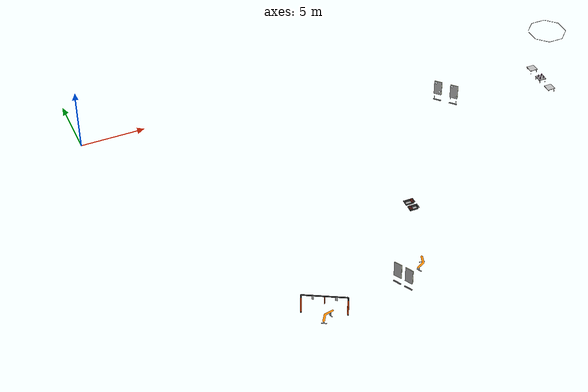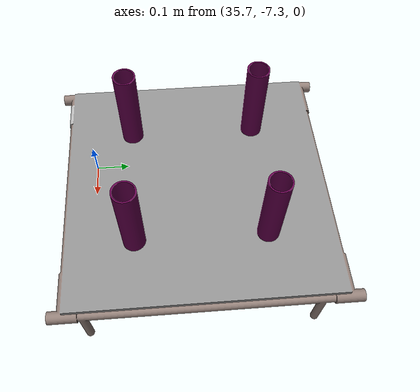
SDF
<?xml version="1.0" ?>
<sdf version="1.9">
    <world name="mission">
        <light type="directional" name="sun">
            <cast_shadows>true</cast_shadows>
            <pose>0 0 10 0 0 0</pose>
            <diffuse>0.8 0.8 0.8 1</diffuse>
            <specular>0.2 0.2 0.2 1</specular>
            <attenuation>
                <range>1000</range>
                <constant>0.9</constant>
                <linear>0.01</linear>
                <quadratic>0.001</quadratic>
            </attenuation>
            <direction>-0.5 0.1 -0.9</direction>
        </light>

        <model name="transdec">
            <uri>../assets/common/transdec/transdec.dae</uri>
        </model>

        <model name="gate">
            <static>true</static>
            <link name="gate">
                <pose>8.75 -25.5 4 0 0 -0.5</pose>
                <visual name="gate_visual">
                    <geometry>
                        <mesh>
                            <uri>../assets/robosub2022/gate/gate.dae</uri>
                        </mesh>
                    </geometry>
                </visual>
                <collision name="gate_collision">
                    <geometry>
                        <mesh>
                            <uri>../assets/robosub2022/gate/gate.dae</uri>
                        </mesh>
                    </geometry>
                </collision>
            </link>
        </model>

        <model name="path_marker_to_buoys">
            <static>true</static>
            <link name="path_marker_to_buoys">
                <pose>9.55 -23.85 0 0 0 -2.15</pose>
                <visual name="path_marker_to_buoys_visual">
                    <geometry>
                        <mesh>
                            <uri>../assets/common/path_marker/path_marker_45ccw.dae</uri>
                        </mesh>
                    </geometry>
                </visual>
                <collision name="path_marker_to_buoys_collision">
                    <geometry>
                        <mesh>
                            <uri>../assets/common/path_marker/path_marker_45ccw.dae</uri>
                        </mesh>
                    </geometry>
                </collision>
            </link>
        </model>

        <model name="ballast_gman">
            <static>true</static>
            <link name="ballast_gman">
                <pose>15.45 -22.75 0 0 0 -2.65</pose>
                <visual name="ballast_gman_visual">
                    <geometry>
                        <mesh>
                            <uri>../assets/robosub2022/buoys/ballast.dae</uri>
                        </mesh>
                    </geometry>
                </visual>
                <collision name="ballast_gman_collision">
                    <geometry>
                        <mesh>
                            <uri>../assets/robosub2022/buoys/ballast.dae</uri>
                        </mesh>
                    </geometry>
                </collision>
            </link>
        </model>

        <model name="buoy_gman">
            <static>false</static>
            <link name="buoy_gman">
                <pose>15.45 -22.75 0 0 0 -2.65</pose>
                <visual name="buoy_gman_visual">
                    <geometry>
                        <mesh>
                            <uri>../assets/robosub2022/buoys/buoy_gman.dae</uri>
                        </mesh>
                    </geometry>
                </visual>
                <collision name="buoy_gman_collision">
                    <geometry>
                        <mesh>
                            <uri>../assets/robosub2022/buoys/buoy_gman.dae</uri>
                        </mesh>
                    </geometry>
                </collision>
            </link>
        </model>

        <model name="ballast_bootlegger">
            <static>true</static>
            <link name="octagon">
                <pose>15.9 -23.55 0 0 0 -2.65</pose>
                <visual name="ballast_bootlegger_visual">
                    <geometry>
                        <mesh>
                            <uri>../assets/robosub2022/buoys/ballast.dae</uri>
                        </mesh>
                    </geometry>
                </visual>
                <collision name="ballast_bootlegger_collision">
                    <geometry>
                        <mesh>
                            <uri>../assets/robosub2022/buoys/ballast.dae</uri>
                        </mesh>
                    </geometry>
                </collision>
            </link>
        </model>

        <model name="buoy_bootlegger">
            <static>false</static>
            <link name="buoy_bootlegger">
                <pose>15.9 -23.55 0 0 0 -2.65</pose>
                <visual name="buoy_bootlegger_visual">
                    <geometry>
                        <mesh>
                            <uri>../assets/robosub2022/buoys/buoy_bootlegger.dae</uri>
                        </mesh>
                    </geometry>
                </visual>
                <collision name="buoy_bootlegger_collision">
                    <geometry>
                        <mesh>
                            <uri>../assets/robosub2022/buoys/buoy_bootlegger.dae</uri>
                        </mesh>
                    </geometry>
                </collision>
            </link>
        </model>

        <model name="path_marker_to_bins">
            <static>true</static>
            <link name="path_marker_to_bins">
                <pose>17.75 -22.1 0 0 0 -2.65</pose>
                <visual name="path_marker_to_bins_visual">
                    <geometry>
                        <mesh>
                            <uri>../assets/common/path_marker/path_marker_45cw.dae</uri>
                        </mesh>
                    </geometry>
                </visual>
                <collision name="path_marker_to_bins_collision">
                    <geometry>
                        <mesh>
                            <uri>../assets/common/path_marker/path_marker_45cw.dae</uri>
                        </mesh>
                    </geometry>
                </collision>
            </link>
        </model>

        <model name="bin_gman">
            <static>true</static>
            <link name="bin_gman">
                <pose>19.82 -15.84 0 0 0 0</pose>
                <visual name="bin_gman_visual">
                    <geometry>
                        <mesh>
                            <uri>../assets/robosub2022/bins/bin_gman.dae</uri>
                        </mesh>
                    </geometry>
                </visual>
                <collision name="bin_gman_collision">
                    <geometry>
                        <mesh>
                            <uri>../assets/robosub2022/bins/bin_gman.dae</uri>
                        </mesh>
                    </geometry>
                </collision>
            </link>
        </model>

        <model name="cover_gman">
            <static>true</static>
            <link name="cover_gman">
                <pose>19.62 -16.5 0 0 0 0</pose>
                <visual name="cover_gman_visual">
                    <geometry>
                        <mesh>
                            <uri>../assets/robosub2022/bins/cover.dae</uri>
                        </mesh>
                    </geometry>
                </visual>
                <collision name="cover_gman_collision">
                    <geometry>
                        <mesh>
                            <uri>../assets/robosub2022/bins/cover.dae</uri>
                        </mesh>
                    </geometry>
                </collision>
            </link>
        </model>

        <model name="bin_bootlegger">
            <static>true</static>
            <link name="bin_bootlegger">
                <pose>19.83 -16.5 0 0 0 0</pose>
                <visual name="bin_bootlegger_visual">
                    <geometry>
                        <mesh>
                            <uri>../assets/robosub2022/bins/bin_bootlegger.dae</uri>
                        </mesh>
                    </geometry>
                </visual>
                <collision name="bin_bootlegger_collision">
                    <geometry>
                        <mesh>
                            <uri>../assets/robosub2022/bins/bin_bootlegger.dae</uri>
                        </mesh>
                    </geometry>
                </collision>
            </link>
        </model>

        <model name="cover_bootlegger">
            <static>true</static>
            <link name="cover_bootlegger">
                <pose>20.03 -15.84 0 0 0 0</pose>
                <visual name="cover_bootlegger_visual">
                    <geometry>
                        <mesh>
                            <uri>../assets/robosub2022/bins/cover.dae</uri>
                        </mesh>
                    </geometry>
                </visual>
                <collision name="cover_bootlegger_collision">
                    <geometry>
                        <mesh>
                            <uri>../assets/robosub2022/bins/cover.dae</uri>
                        </mesh>
                    </geometry>
                </collision>
            </link>
        </model>

        <model name="pinger_torpedo">
            <uri>../assets/common/pinger/pinger.sdf</uri>
            <pose>27.75 -6.35 0 0 0 0</pose>
        </model>

        <model name="torpedo_gman">
            <static>true</static>
            <link name="torpedo_gman">
                <pose>27.3 -5.85 0 0 0 -2.4</pose>
                <visual name="torpedo_gman_visual">
                    <geometry>
                        <mesh>
                            <uri>../assets/robosub2022/torpedo/torpedo_gman.dae</uri>
                        </mesh>
                    </geometry>
                </visual>
                <collision name="torpedo_gman_collision">
                    <geometry>
                        <mesh>
                            <uri>../assets/robosub2022/torpedo/torpedo_gman.dae</uri>
                        </mesh>
                    </geometry>
                </collision>
            </link>
        </model>

        <model name="torpedo_bootlegger">
            <static>true</static>
            <link name="torpedo_bootlegger">
                <pose>28.2 -6.8 0 0 0 -2.4</pose>
                <visual name="torpedo_bootlegger_visual">
                    <geometry>
                        <mesh>
                            <uri>../assets/robosub2022/torpedo/torpedo_bootlegger.dae</uri>
                        </mesh>
                    </geometry>
                </visual>
                <collision name="torpedo_bootlegger_collision">
                    <geometry>
                        <mesh>
                            <uri>../assets/robosub2022/torpedo/torpedo_bootlegger.dae</uri>
                        </mesh>
                    </geometry>
                </collision>
            </link>
        </model>

        <model name="pinger_octagon">
            <uri>../assets/common/pinger/pinger.sdf</uri>
            <pose>36 -7 0 0 0 0</pose>
        </model>

        <model name="octagon">
            <static>true</static>
            <link name="octagon">
                <pose>36 -7 4.88 0 0 0</pose>
                <visual name="octagon_visual">
                    <geometry>
                        <mesh>
                            <uri>../assets/robosub2022/octagon/octagon.dae</uri>
                        </mesh>
                    </geometry>
                </visual>
                <collision name="octagon_collision">
                    <geometry>
                        <mesh>
                            <uri>../assets/robosub2022/octagon/octagon.dae</uri>
                        </mesh>
                    </geometry>
                </collision>
            </link>
        </model>

        <model name="table_gman">
            <static>true</static>
            <link name="table_gman">
                <pose>36 -5.63 0 0 0 -1.57</pose>
                <visual name="table_gman_visual">
                    <geometry>
                        <mesh>
                            <uri>../assets/robosub2022/octagon/table_gman.dae</uri>
                        </mesh>
                    </geometry>
                </visual>
                <collision name="table_gman_collision">
                    <geometry>
                        <mesh>
                            <uri>../assets/robosub2022/octagon/table_gman.dae</uri>
                        </mesh>
                    </geometry>
                </collision>
            </link>
        </model>

        <model name="table_bootlegger">
            <static>true</static>
            <link name="table_bootlegger">
                <pose>36 -8.37 0 0 0 -1.57</pose>
                <visual name="table_bootlegger_visual">
                    <geometry>
                        <mesh>
                            <uri>../assets/robosub2022/octagon/table_bootlegger.dae</uri>
                        </mesh>
                    </geometry>
                </visual>
                <collision name="table_bootlegger_collision">
                    <geometry>
                        <mesh>
                            <uri>../assets/robosub2022/octagon/table_bootlegger.dae</uri>
                        </mesh>
                    </geometry>
                </collision>
            </link>
        </model>

        <model name="table_bottles">
            <static>true</static>
            <link name="table_bottles">
                <pose>36 -7 0 0 0 -1.57</pose>
                <visual name="table_bottles_visual">
                    <geometry>
                        <mesh>
                            <uri>../assets/robosub2022/octagon/table_bottles.dae</uri>
                        </mesh>
                    </geometry>
                </visual>
                <collision name="table_bottles_collision">
                    <geometry>
                        <mesh>
                            <uri>../assets/robosub2022/octagon/table_bottles.dae</uri>
                        </mesh>
                    </geometry>
                </collision>
            </link>
        </model>

        <model name="bottle_1">
            <static>false</static>
            <link name="bottle_1">
                <pose>35.85 -6.85 0 0 0 -1.57</pose>
                <visual name="bottle_1_visual">
                    <geometry>
                        <mesh>
                            <uri>../assets/robosub2022/octagon/bottle.dae</uri>
                        </mesh>
                    </geometry>
                </visual>
                <collision name="bottle_1_collision">
                    <geometry>
                        <mesh>
                            <uri>../assets/robosub2022/octagon/bottle.dae</uri>
                        </mesh>
                    </geometry>
                </collision>
            </link>
        </model>

        <model name="bottle_2">
            <static>false</static>
            <link name="bottle_2">
                <pose>35.85 -7.15 0 0 0 -1.57</pose>
                <visual name="bottle_2_visual">
                    <geometry>
                        <mesh>
                            <uri>../assets/robosub2022/octagon/bottle.dae</uri>
                        </mesh>
                    </geometry>
                </visual>
                <collision name="bottle_2_collision">
                    <geometry>
                        <mesh>
                            <uri>../assets/robosub2022/octagon/bottle.dae</uri>
                        </mesh>
                    </geometry>
                </collision>
            </link>
        </model>

        <model name="bottle_3">
            <static>false</static>
            <link name="bottle_2">
                <pose>36.15 -7.15 0 0 0 -1.57</pose>
                <visual name="bottle_3_visual">
                    <geometry>
                        <mesh>
                            <uri>../assets/robosub2022/octagon/bottle.dae</uri>
                        </mesh>
                    </geometry>
                </visual>
                <collision name="bottle_3_collision">
                    <geometry>
                        <mesh>
                            <uri>../assets/robosub2022/octagon/bottle.dae</uri>
                        </mesh>
                    </geometry>
                </collision>
            </link>
        </model>

        <model name="bottle_4">
            <static>false</static>
            <link name="bottle_4">
                <pose>36.15 -6.85 0 0 0 -1.57</pose>
                <visual name="bottle_4_visual">
                    <geometry>
                        <mesh>
                            <uri>../assets/robosub2022/octagon/bottle.dae</uri>
                        </mesh>
                    </geometry>
                </visual>
                <collision name="bottle_4_collision">
                    <geometry>
                        <mesh>
                            <uri>../assets/robosub2022/octagon/bottle.dae</uri>
                        </mesh>
                    </geometry>
                </collision>
            </link>
        </model>
    </world>
</sdf>
